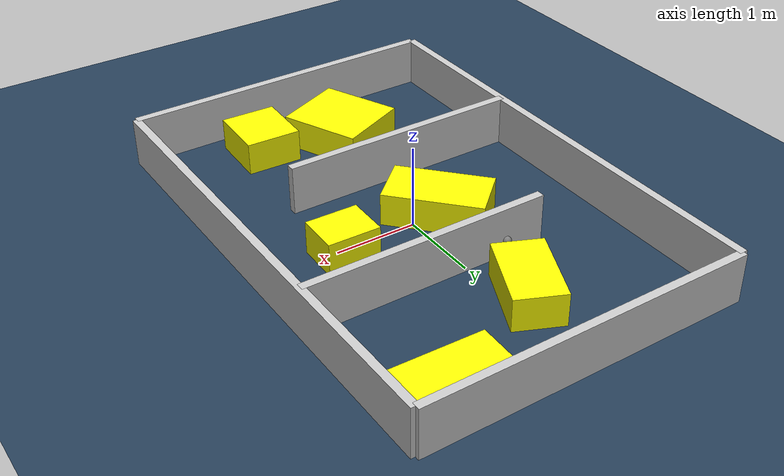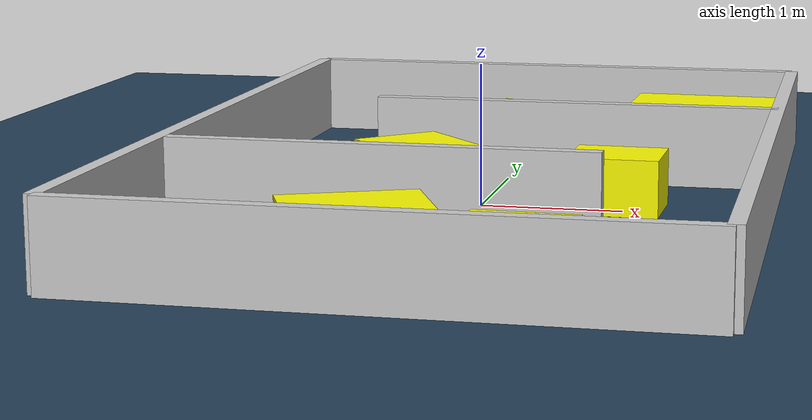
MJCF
<?xml version="1.0" ?>
<mujoco model="generated_environment">
  <option timestep="0.01" integrator="RK4" cone="elliptic"/>
  <default>
    <geom density="1"/>
  </default>
  <asset>
    <texture builtin="gradient" height="3072" rgb1="0.3 0.5 0.7" rgb2="0 0 0" type="skybox" width="512"/>
    <texture builtin="checker" height="300" mark="edge" markrgb="0.8 0.8 0.8" name="groundplane" rgb1="0.2 0.3 0.4" rgb2="0.1 0.2 0.3" type="2d" width="300"/>
    <material name="groundplane" reflectance="0.2" texrepeat="5 5" texture="groundplane" texuniform="true"/>
    <material name="robot" rgba="0.0 1.0 0.0 1"/>
  </asset>
  <worldbody>
    <light dir="0 0 -1" directional="true" pos="0 0 1.5"/>
    <geom condim="4" friction="1.0 0.005 0.001" material="groundplane" name="floor" size="0 0 0.05" type="plane"/>
    <body name="walls">
      <geom name="wall_1" condim="4" pos="-2.0 0.0 0.3" rgba="0.800000011920929 0.800000011920929 0.800000011920929 1.0" size="0.05 3.0 0.3" type="box"/>
      <geom name="wall_2" condim="4" pos="2.0 0.0 0.3" rgba="0.800000011920929 0.800000011920929 0.800000011920929 1.0" size="0.05 3.0 0.3" type="box"/>
      <geom name="wall_3" condim="4" pos="0.0 -3.0 0.3" rgba="0.800000011920929 0.800000011920929 0.800000011920929 1.0" size="2.0 0.05 0.3" type="box"/>
      <geom name="wall_4" condim="4" pos="0.0 3.0 0.3" rgba="0.800000011920929 0.800000011920929 0.800000011920929 1.0" size="2.0 0.05 0.3" type="box"/>
      <geom name="wall_5" condim="4" pos="-0.5 -1.0 0.3" rgba="0.800000011920929 0.800000011920929 0.800000011920929 1.0" size="1.5 0.05 0.3" type="box"/>
      <geom name="wall_6" condim="4" pos="0.5 1.0 0.3" rgba="0.800000011920929 0.800000011920929 0.800000011920929 1.0" size="1.5 0.05 0.3" type="box"/>
    </body>
    <body name="robot">
      <joint name="joint_x" type="slide" pos="0 0 0" axis="1 0 0"/>
      <joint name="joint_y" type="slide" pos="0 0 0" axis="0 1 0"/>
      <geom name="robot" type="sphere" pos="-0.511536974691845 1.0616961375298901 0.2" size="0.05" mass="5." friction="1.0 0.005 0.0001" condim="4"/>
      <site name="sensor_ball"/>
    </body>
    <body name="obstacle_1_movable">
      <geom name="obstacle_1_movable" condim="4" pos="-0.21405004833231156 1.7956004372642118 0.2" euler="0 0 245.8344640317272" friction="1.0 0.005 0.001" rgba="1 1 0 1" size="0.49198956328518123 0.29666275547466514 0.2" type="box" mass="0.1"/>
      <joint type="free"/>
    </body>
    <body name="obstacle_2_movable">
      <geom name="obstacle_2_movable" condim="4" pos="0.9555026789117624 0.0630558676655113 0.2" euler="0 0 358.8017730006793" friction="1.0 0.005 0.001" rgba="1 1 0 1" size="0.3187555097292587 0.26054052232873615 0.2" type="box" mass="0.1"/>
      <joint type="free"/>
    </body>
    <body name="obstacle_3_movable">
      <geom name="obstacle_3_movable" condim="4" pos="-0.3417472288355168 0.00879882634157303 0.2" euler="0 0 222.20875791190406" friction="1.0 0.005 0.001" rgba="1 1 0 1" size="0.32916328985220267 0.5970862714176379 0.2" type="box" mass="0.1"/>
      <joint type="free"/>
    </body>
    <body name="obstacle_4_movable">
      <geom name="obstacle_4_movable" condim="4" pos="-0.31564870652686805 -2.101314820687624 0.2" euler="0 0 113.55937806798542" friction="1.0 0.005 0.001" rgba="1 1 0 1" size="0.5114939118003601 0.46183221417384457 0.2" type="box" mass="0.1"/>
      <joint type="free"/>
    </body>
    <body name="obstacle_5_movable">
      <geom name="obstacle_5_movable" condim="4" pos="1.348427831512356 2.581785580289008 0.2" euler="0 0 178.0568167402164" friction="1.0 0.005 0.001" rgba="1 1 0 1" size="0.5897740213508755 0.2781750310601362 0.2" type="box" mass="0.1"/>
      <joint type="free"/>
    </body>
    <body name="obstacle_6_movable">
      <geom name="obstacle_6_movable" condim="4" pos="0.6725922477945774 -2.3643730569213965 0.2" euler="0 0 267.8514483192689" friction="1.0 0.005 0.001" rgba="1 1 0 1" size="0.3706436453146942 0.3389037338706515 0.2" type="box" mass="0.1"/>
      <joint type="free"/>
    </body>
  </worldbody>
  <actuator>
    <motor name="actuator_x" joint="joint_x" gear="1" ctrlrange="-1 1"/>
    <motor name="actuator_y" joint="joint_y" gear="1" ctrlrange="-1 1"/>
  </actuator>
</mujoco>
